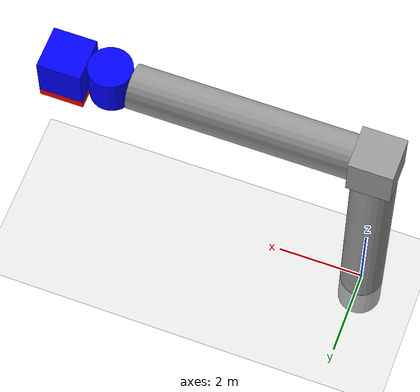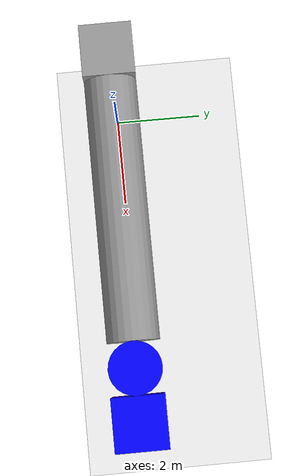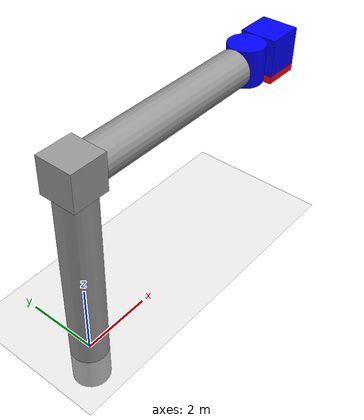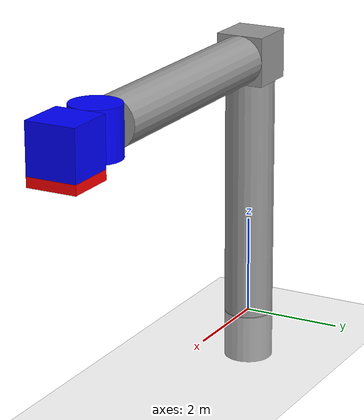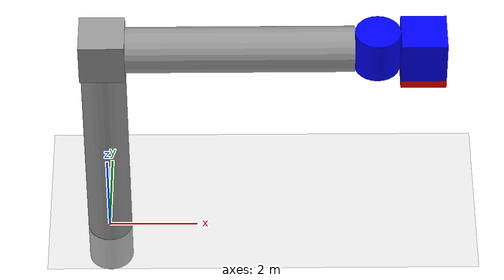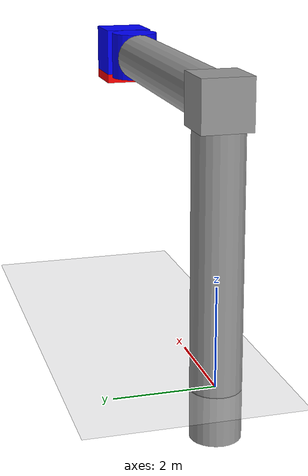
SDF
<sdf version="1.6">
 <world name="default">
  <light name="sun" type="directional">
   <pose>0 0 10 0 -0 0</pose>
   <diffuse>0.8 0.8 0.8 1</diffuse>
   <specular>0.2 0.2 0.2 1</specular>
   <attenuation>
    <range>1000</range>
    <constant>0.9</constant>
    <linear>0.01</linear>
    <quadratic>0.001</quadratic>
   </attenuation>
   <direction>-0.5 0.1 -0.9</direction>
  </light>
  <model name="ground_plane">
   <static>1</static>
   <link name="link">
    <collision name="collision">
     <geometry><plane><normal>0 0 1</normal><size>100 100</size></plane></geometry>
     <surface>
      <contact><collide_bitmask>65535</collide_bitmask></contact>
      <friction><ode><mu>100</mu><mu2>50</mu2></ode></friction>
     </surface>
    </collision>
    <visual name="visual">
     <cast_shadows>0</cast_shadows>
     <geometry><plane><normal>0 0 1</normal><size>100 100</size></plane></geometry>
     <material>
      <script><uri>file://media/materials/scripts/gazebo.material</uri><name>Gazebo/Grey</name></script>
     </material>
    </visual>
   </link>
  </model>
  <gravity>0 0 -9.8</gravity>
  <magnetic_field>6e-06 2.3e-05 -4.2e-05</magnetic_field>
  <atmosphere type="adiabatic"/>
  <physics name="default_physics" default="0" type="ode">
   <max_step_size>0.001</max_step_size>
   <real_time_factor>1</real_time_factor>
   <real_time_update_rate>1000</real_time_update_rate>
  </physics>
  <scene><ambient>0.4 0.4 0.4 1</ambient><background>0.7 0.7 0.7 1</background><shadows>1</shadows></scene>
  <audio><device>default</device></audio>
  <spherical_coordinates>
   <surface_model>EARTH_WGS84</surface_model>
   <latitude_deg>0</latitude_deg>
   <longitude_deg>0</longitude_deg>
   <elevation>0</elevation>
   <heading_deg>0</heading_deg>
  </spherical_coordinates>
  <model name="RBEProjArm">
   <link name="link_0">
    <inertial>
     <mass>1</mass>
     <inertia><ixx>0.145833</ixx><ixy>0</ixy><ixz>0</ixz><iyy>0.145833</iyy><iyz>0</iyz><izz>0.125</izz></inertia>
    </inertial>
    <pose>-3.28571 0 -4.62857 0 -0 0</pose>
    <visual name="visual">
     <geometry><cylinder><radius>0.5</radius><length>1</length></cylinder></geometry>
     <material>
      <lighting>1</lighting>
      <script><uri>file://media/materials/scripts/gazebo.material</uri><name>Gazebo/Grey</name></script>
      <shader type="vertex"><normal_map>__default__</normal_map></shader>
      <ambient>0.3 0.3 0.3 1</ambient>
      <diffuse>0.7 0.7 0.7 1</diffuse>
      <specular>0.01 0.01 0.01 1</specular>
      <emissive>0 0 0 1</emissive>
     </material>
    </visual>
    <collision name="collision">
     <geometry><cylinder><radius>0.5</radius><length>1</length></cylinder></geometry>
     <surface>
      <friction>
       <ode><mu>1</mu><mu2>1</mu2><fdir1>0 0 0</fdir1><slip1>0</slip1><slip2>0</slip2></ode>
       <torsional>
        <coefficient>1</coefficient>
        <patch_radius>0</patch_radius>
        <surface_radius>0</surface_radius>
        <use_patch_radius>1</use_patch_radius>
        <ode><slip>0</slip></ode>
       </torsional>
      </friction>
      <bounce><restitution_coefficient>0</restitution_coefficient><threshold>1e+06</threshold></bounce>
      <contact>
       <collide_without_contact>0</collide_without_contact>
       <collide_without_contact_bitmask>1</collide_without_contact_bitmask>
       <collide_bitmask>1</collide_bitmask>
       <ode>
        <soft_cfm>0</soft_cfm>
        <soft_erp>0.2</soft_erp>
        <kp>1e+13</kp>
        <kd>1</kd>
        <max_vel>0.01</max_vel>
        <min_depth>0</min_depth>
       </ode>
       <bullet>
        <split_impulse>1</split_impulse>
        <split_impulse_penetration_threshold>-0.01</split_impulse_penetration_threshold>
        <soft_cfm>0</soft_cfm>
        <soft_erp>0.2</soft_erp>
        <kp>1e+13</kp>
        <kd>1</kd>
       </bullet>
      </contact>
     </surface>
    </collision>
   </link>
   <link name="link_1">
    <inertial>
     <mass>1</mass>
     <inertia><ixx>0.145833</ixx><ixy>0</ixy><ixz>0</ixz><iyy>0.145833</iyy><iyz>0</iyz><izz>0.125</izz></inertia>
    </inertial>
    <pose>-3.28571 0 -1.62857 0 -0 0</pose>
    <visual name="visual">
     <geometry><cylinder><radius>0.5</radius><length>5</length></cylinder></geometry>
     <material>
      <lighting>1</lighting>
      <script><uri>file://media/materials/scripts/gazebo.material</uri><name>Gazebo/Grey</name></script>
      <shader type="vertex"><normal_map>__default__</normal_map></shader>
      <ambient>0.3 0.3 0.3 1</ambient>
      <diffuse>0.7 0.7 0.7 1</diffuse>
      <specular>0.01 0.01 0.01 1</specular>
      <emissive>0 0 0 1</emissive>
     </material>
    </visual>
    <collision name="collision">
     <geometry><cylinder><radius>0.5</radius><length>5</length></cylinder></geometry>
     <surface>
      <friction>
       <ode><mu>1</mu><mu2>1</mu2><fdir1>0 0 0</fdir1><slip1>0</slip1><slip2>0</slip2></ode>
       <torsional>
        <coefficient>1</coefficient>
        <patch_radius>0</patch_radius>
        <surface_radius>0</surface_radius>
        <use_patch_radius>1</use_patch_radius>
        <ode><slip>0</slip></ode>
       </torsional>
      </friction>
      <bounce><restitution_coefficient>0</restitution_coefficient><threshold>1e+06</threshold></bounce>
      <contact>
       <collide_without_contact>0</collide_without_contact>
       <collide_without_contact_bitmask>1</collide_without_contact_bitmask>
       <collide_bitmask>1</collide_bitmask>
       <ode>
        <soft_cfm>0</soft_cfm>
        <soft_erp>0.2</soft_erp>
        <kp>1e+13</kp>
        <kd>1</kd>
        <max_vel>0.01</max_vel>
        <min_depth>0</min_depth>
       </ode>
       <bullet>
        <split_impulse>1</split_impulse>
        <split_impulse_penetration_threshold>-0.01</split_impulse_penetration_threshold>
        <soft_cfm>0</soft_cfm>
        <soft_erp>0.2</soft_erp>
        <kp>1e+13</kp>
        <kd>1</kd>
       </bullet>
      </contact>
     </surface>
    </collision>
   </link>
   <link name="link_10">
    <inertial>
     <mass>1</mass>
     <inertia>
      <ixx>0.166667</ixx>
      <ixy>0</ixy>
      <ixz>0</ixz>
      <iyy>0.166667</iyy>
      <iyz>0</iyz>
      <izz>0.166667</izz>
     </inertia>
    </inertial>
    <pose>3.71429 0 0.771429 0 -0 0</pose>
    <visual name="visual">
     <geometry><box><size>1 1 0.2</size></box></geometry>
     <material>
      <lighting>1</lighting>
      <script><uri>file://media/materials/scripts/gazebo.material</uri><name>Gazebo/Grey</name></script>
      <shader type="vertex"><normal_map>__default__</normal_map></shader>
      <ambient>1 0 0 1</ambient>
      <diffuse>0.7 0.7 0.7 1</diffuse>
      <specular>0.01 0.01 0.01 1</specular>
      <emissive>0 0 0 1</emissive>
     </material>
    </visual>
    <collision name="collision">
     <geometry><box><size>1 1 0.2</size></box></geometry>
     <surface>
      <friction>
       <ode><mu>1</mu><mu2>1</mu2><fdir1>0 0 0</fdir1><slip1>0</slip1><slip2>0</slip2></ode>
       <torsional>
        <coefficient>1</coefficient>
        <patch_radius>0</patch_radius>
        <surface_radius>0</surface_radius>
        <use_patch_radius>1</use_patch_radius>
        <ode><slip>0</slip></ode>
       </torsional>
      </friction>
      <bounce><restitution_coefficient>0</restitution_coefficient><threshold>1e+06</threshold></bounce>
      <contact>
       <collide_without_contact>0</collide_without_contact>
       <collide_without_contact_bitmask>1</collide_without_contact_bitmask>
       <collide_bitmask>1</collide_bitmask>
       <ode>
        <soft_cfm>0</soft_cfm>
        <soft_erp>0.2</soft_erp>
        <kp>1e+13</kp>
        <kd>1</kd>
        <max_vel>0.01</max_vel>
        <min_depth>0</min_depth>
       </ode>
       <bullet>
        <split_impulse>1</split_impulse>
        <split_impulse_penetration_threshold>-0.01</split_impulse_penetration_threshold>
        <soft_cfm>0</soft_cfm>
        <soft_erp>0.2</soft_erp>
        <kp>1e+13</kp>
        <kd>1</kd>
       </bullet>
      </contact>
     </surface>
    </collision>
   </link>
   <link name="link_3">
    <inertial>
     <mass>1</mass>
     <inertia>
      <ixx>0.166667</ixx>
      <ixy>0</ixy>
      <ixz>0</ixz>
      <iyy>0.166667</iyy>
      <iyz>0</iyz>
      <izz>0.166667</izz>
     </inertia>
    </inertial>
    <pose>-3.28571 0 1.37143 0 -0 0</pose>
    <visual name="visual">
     <geometry><box><size>1 1 1</size></box></geometry>
     <material>
      <lighting>1</lighting>
      <script><uri>file://media/materials/scripts/gazebo.material</uri><name>Gazebo/Grey</name></script>
      <shader type="vertex"><normal_map>__default__</normal_map></shader>
      <ambient>0.3 0.3 0.3 1</ambient>
      <diffuse>0.7 0.7 0.7 1</diffuse>
      <specular>0.01 0.01 0.01 1</specular>
      <emissive>0 0 0 1</emissive>
     </material>
    </visual>
    <collision name="collision">
     <geometry><box><size>1 1 1</size></box></geometry>
     <surface>
      <friction>
       <ode><mu>1</mu><mu2>1</mu2><fdir1>0 0 0</fdir1><slip1>0</slip1><slip2>0</slip2></ode>
       <torsional>
        <coefficient>1</coefficient>
        <patch_radius>0</patch_radius>
        <surface_radius>0</surface_radius>
        <use_patch_radius>1</use_patch_radius>
        <ode><slip>0</slip></ode>
       </torsional>
      </friction>
      <bounce><restitution_coefficient>0</restitution_coefficient><threshold>1e+06</threshold></bounce>
      <contact>
       <collide_without_contact>0</collide_without_contact>
       <collide_without_contact_bitmask>1</collide_without_contact_bitmask>
       <collide_bitmask>1</collide_bitmask>
       <ode>
        <soft_cfm>0</soft_cfm>
        <soft_erp>0.2</soft_erp>
        <kp>1e+13</kp>
        <kd>1</kd>
        <max_vel>0.01</max_vel>
        <min_depth>0</min_depth>
       </ode>
       <bullet>
        <split_impulse>1</split_impulse>
        <split_impulse_penetration_threshold>-0.01</split_impulse_penetration_threshold>
        <soft_cfm>0</soft_cfm>
        <soft_erp>0.2</soft_erp>
        <kp>1e+13</kp>
        <kd>1</kd>
       </bullet>
      </contact>
     </surface>
    </collision>
   </link>
   <link name="link_6">
    <inertial>
     <mass>1</mass>
     <inertia><ixx>0.145833</ixx><ixy>0</ixy><ixz>0</ixz><iyy>0.145833</iyy><iyz>0</iyz><izz>0.125</izz></inertia>
    </inertial>
    <pose>-0.285713 0 1.37143 0 1.57 0</pose>
    <visual name="visual">
     <geometry><cylinder><radius>0.5</radius><length>5</length></cylinder></geometry>
     <material>
      <lighting>1</lighting>
      <script><uri>file://media/materials/scripts/gazebo.material</uri><name>Gazebo/Grey</name></script>
      <shader type="vertex"><normal_map>__default__</normal_map></shader>
      <ambient>0.3 0.3 0.3 1</ambient>
      <diffuse>0.7 0.7 0.7 1</diffuse>
      <specular>0.01 0.01 0.01 1</specular>
      <emissive>0 0 0 1</emissive>
     </material>
    </visual>
    <collision name="collision">
     <geometry><cylinder><radius>0.5</radius><length>5</length></cylinder></geometry>
     <surface>
      <friction>
       <ode><mu>1</mu><mu2>1</mu2><fdir1>0 0 0</fdir1><slip1>0</slip1><slip2>0</slip2></ode>
       <torsional>
        <coefficient>1</coefficient>
        <patch_radius>0</patch_radius>
        <surface_radius>0</surface_radius>
        <use_patch_radius>1</use_patch_radius>
        <ode><slip>0</slip></ode>
       </torsional>
      </friction>
      <bounce><restitution_coefficient>0</restitution_coefficient><threshold>1e+06</threshold></bounce>
      <contact>
       <collide_without_contact>0</collide_without_contact>
       <collide_without_contact_bitmask>1</collide_without_contact_bitmask>
       <collide_bitmask>1</collide_bitmask>
       <ode>
        <soft_cfm>0</soft_cfm>
        <soft_erp>0.2</soft_erp>
        <kp>1e+13</kp>
        <kd>1</kd>
        <max_vel>0.01</max_vel>
        <min_depth>0</min_depth>
       </ode>
       <bullet>
        <split_impulse>1</split_impulse>
        <split_impulse_penetration_threshold>-0.01</split_impulse_penetration_threshold>
        <soft_cfm>0</soft_cfm>
        <soft_erp>0.2</soft_erp>
        <kp>1e+13</kp>
        <kd>1</kd>
       </bullet>
      </contact>
     </surface>
    </collision>
   </link>
   <link name="link_7">
    <inertial>
     <mass>1</mass>
     <inertia><ixx>0.145833</ixx><ixy>0</ixy><ixz>0</ixz><iyy>0.145833</iyy><iyz>0</iyz><izz>0.125</izz></inertia>
    </inertial>
    <pose>2.71429 0 1.37143 0 -0 0</pose>
    <visual name="visual">
     <geometry><cylinder><radius>0.5</radius><length>1</length></cylinder></geometry>
     <material>
      <lighting>1</lighting>
      <script><uri>file://media/materials/scripts/gazebo.material</uri><name>Gazebo/Grey</name></script>
      <shader type="vertex"><normal_map>__default__</normal_map></shader>
      <ambient>0 0 1 1</ambient>
      <diffuse>0.7 0.7 0.7 1</diffuse>
      <specular>0.01 0.01 0.01 1</specular>
      <emissive>0 0 0 1</emissive>
     </material>
    </visual>
    <collision name="collision">
     <geometry><cylinder><radius>0.5</radius><length>1</length></cylinder></geometry>
     <surface>
      <friction>
       <ode><mu>1</mu><mu2>1</mu2><fdir1>0 0 0</fdir1><slip1>0</slip1><slip2>0</slip2></ode>
       <torsional>
        <coefficient>1</coefficient>
        <patch_radius>0</patch_radius>
        <surface_radius>0</surface_radius>
        <use_patch_radius>1</use_patch_radius>
        <ode><slip>0</slip></ode>
       </torsional>
      </friction>
      <bounce><restitution_coefficient>0</restitution_coefficient><threshold>1e+06</threshold></bounce>
      <contact>
       <collide_without_contact>0</collide_without_contact>
       <collide_without_contact_bitmask>1</collide_without_contact_bitmask>
       <collide_bitmask>1</collide_bitmask>
       <ode>
        <soft_cfm>0</soft_cfm>
        <soft_erp>0.2</soft_erp>
        <kp>1e+13</kp>
        <kd>1</kd>
        <max_vel>0.01</max_vel>
        <min_depth>0</min_depth>
       </ode>
       <bullet>
        <split_impulse>1</split_impulse>
        <split_impulse_penetration_threshold>-0.01</split_impulse_penetration_threshold>
        <soft_cfm>0</soft_cfm>
        <soft_erp>0.2</soft_erp>
        <kp>1e+13</kp>
        <kd>1</kd>
       </bullet>
      </contact>
     </surface>
    </collision>
   </link>
   <link name="link_9">
    <inertial>
     <mass>1</mass>
     <inertia>
      <ixx>0.166667</ixx>
      <ixy>0</ixy>
      <ixz>0</ixz>
      <iyy>0.166667</iyy>
      <iyz>0</iyz>
      <izz>0.166667</izz>
     </inertia>
    </inertial>
    <pose>3.71429 0 1.37143 0 -0 0</pose>
    <visual name="visual">
     <geometry><box><size>1 1 1</size></box></geometry>
     <material>
      <lighting>1</lighting>
      <script><uri>file://media/materials/scripts/gazebo.material</uri><name>Gazebo/Grey</name></script>
      <shader type="vertex"><normal_map>__default__</normal_map></shader>
      <ambient>0 0 1 1</ambient>
      <diffuse>0.7 0.7 0.7 1</diffuse>
      <specular>0.01 0.01 0.01 1</specular>
      <emissive>0 0 0 1</emissive>
     </material>
    </visual>
    <collision name="collision">
     <geometry><box><size>1 1 1</size></box></geometry>
     <surface>
      <friction>
       <ode><mu>1</mu><mu2>1</mu2><fdir1>0 0 0</fdir1><slip1>0</slip1><slip2>0</slip2></ode>
       <torsional>
        <coefficient>1</coefficient>
        <patch_radius>0</patch_radius>
        <surface_radius>0</surface_radius>
        <use_patch_radius>1</use_patch_radius>
        <ode><slip>0</slip></ode>
       </torsional>
      </friction>
      <bounce><restitution_coefficient>0</restitution_coefficient><threshold>1e+06</threshold></bounce>
      <contact>
       <collide_without_contact>0</collide_without_contact>
       <collide_without_contact_bitmask>1</collide_without_contact_bitmask>
       <collide_bitmask>1</collide_bitmask>
       <ode>
        <soft_cfm>0</soft_cfm>
        <soft_erp>0.2</soft_erp>
        <kp>1e+13</kp>
        <kd>1</kd>
        <max_vel>0.01</max_vel>
        <min_depth>0</min_depth>
       </ode>
       <bullet>
        <split_impulse>1</split_impulse>
        <split_impulse_penetration_threshold>-0.01</split_impulse_penetration_threshold>
        <soft_cfm>0</soft_cfm>
        <soft_erp>0.2</soft_erp>
        <kp>1e+13</kp>
        <kd>1</kd>
       </bullet>
      </contact>
     </surface>
    </collision>
   </link>
   <joint name="link_0_JOINT_0" type="revolute">
    <parent>link_0</parent>
    <child>link_1</child>
    <axis>
     <xyz>0 0 1</xyz>
     <use_parent_model_frame>0</use_parent_model_frame>
     <limit>
      <lower>-1.79769e+308</lower>
      <upper>1.79769e+308</upper>
      <effort>-1</effort>
      <velocity>-1</velocity>
     </limit>
     <dynamics>
      <spring_reference>0</spring_reference>
      <spring_stiffness>0</spring_stiffness>
      <damping>0</damping>
      <friction>0</friction>
     </dynamics>
    </axis>
    <physics>
     <ode><limit><cfm>0</cfm><erp>0.2</erp></limit><suspension><cfm>0</cfm><erp>0.2</erp></suspension></ode>
    </physics>
   </joint>
   <joint name="link_1_JOINT_7" type="fixed">
    <parent>link_1</parent>
    <child>link_3</child>
    <physics>
     <ode><limit><cfm>0</cfm><erp>0.2</erp></limit><suspension><cfm>0</cfm><erp>0.2</erp></suspension></ode>
    </physics>
   </joint>
   <joint name="link_6_JOINT_3" type="fixed">
    <parent>link_6</parent>
    <child>link_3</child>
    <physics>
     <ode><limit><cfm>0</cfm><erp>0.2</erp></limit><suspension><cfm>0</cfm><erp>0.2</erp></suspension></ode>
    </physics>
   </joint>
   <joint name="link_7_JOINT_4" type="revolute">
    <parent>link_6</parent>
    <child>link_7</child>
    <axis>
     <xyz>0 0 1</xyz>
     <use_parent_model_frame>0</use_parent_model_frame>
     <limit>
      <lower>-1.79769e+308</lower>
      <upper>1.79769e+308</upper>
      <effort>-1</effort>
      <velocity>-1</velocity>
     </limit>
     <dynamics>
      <spring_reference>0</spring_reference>
      <spring_stiffness>0</spring_stiffness>
      <damping>0</damping>
      <friction>0</friction>
     </dynamics>
    </axis>
    <physics>
     <ode><limit><cfm>0</cfm><erp>0.2</erp></limit><suspension><cfm>0</cfm><erp>0.2</erp></suspension></ode>
    </physics>
   </joint>
   <joint name="link_9_JOINT_5" type="fixed">
    <parent>link_7</parent>
    <child>link_9</child>
    <physics>
     <ode><limit><cfm>0</cfm><erp>0.2</erp></limit><suspension><cfm>0</cfm><erp>0.2</erp></suspension></ode>
    </physics>
   </joint>
   <joint name="link_9_JOINT_6" type="prismatic">
    <parent>link_9</parent>
    <child>link_10</child>
    <axis>
     <xyz>0 0 -1</xyz>
     <use_parent_model_frame>0</use_parent_model_frame>
     <limit>
      <lower>-1.79769e+308</lower>
      <upper>1.79769e+308</upper>
      <effort>-1</effort>
      <velocity>-1</velocity>
     </limit>
     <dynamics>
      <spring_reference>0</spring_reference>
      <spring_stiffness>0</spring_stiffness>
      <damping>0</damping>
      <friction>0</friction>
     </dynamics>
    </axis>
    <physics>
     <ode><limit><cfm>0</cfm><erp>0.2</erp></limit><suspension><cfm>0</cfm><erp>0.2</erp></suspension></ode>
    </physics>
   </joint>
   <static>0</static>
   <pose>3.28571 0 4.12857 0 -0 0</pose>
  </model>
 </world>
</sdf>
